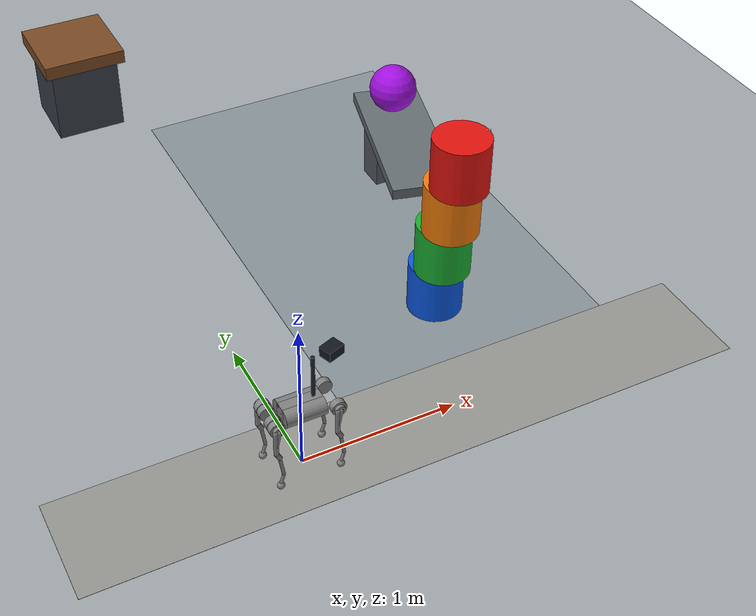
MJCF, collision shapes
<mujoco model="pss_go1_online">
  <compiler angle="radian" meshdir="../../pss/sim/mujoco/assets/go1/meshes" />
  <option timestep="0.001" iterations="100" ls_iterations="20">
    <flag eulerdamp="disable" />
  </option>
  <visual>
    <global offwidth="1280" offheight="720" />
    <headlight ambient="0.18 0.19 0.2" diffuse="0.24 0.25 0.27" specular="0 0 0" />
    <map fogstart="8" fogend="18" zfar="30" />
    <rgba haze="0.75 0.79 0.84 1" />
  </visual>
  <default>
    <default class="go1">
      <joint armature="0.005" damping="0.5" />
      <geom contype="0" conaffinity="0" condim="1" />
      <general forcerange="-23.7 23.7" biastype="affine" gainprm="35" biasprm="0 -35" />
      <default class="abduction">
        <joint range="-0.863 0.863" frictionloss="0.3" />
      </default>
      <default class="hip">
        <joint range="-0.686 4.501" frictionloss="0.3" />
      </default>
      <default class="knee">
        <joint range="-2.818 -0.888" frictionloss="1" />
        <general forcerange="-35.55 35.55" />
      </default>
      <default class="visual">
        <geom type="mesh" group="2" material="dark" />
      </default>
      <default class="collision">
        <geom type="capsule" conaffinity="1" group="3" />
        <default class="hip_left1">
          <geom size="0.046 0.02 0" type="cylinder" />
        </default>
        <default class="hip_left2">
          <geom size="0.031 0.02 0" type="cylinder" />
        </default>
        <default class="hip_left3">
          <geom size="0.046 0.02 0" type="cylinder" />
        </default>
        <default class="hip_right1">
          <geom size="0.046 0.02 0" type="cylinder" />
        </default>
        <default class="hip_right2">
          <geom size="0.031 0.02 0" type="cylinder" />
        </default>
        <default class="hip_right3">
          <geom size="0.046 0.02 0" type="cylinder" />
        </default>
        <default class="thigh1">
          <geom size="0.015 0 0" />
        </default>
        <default class="thigh2">
          <geom size="0.015 0 0" />
        </default>
        <default class="thigh3">
          <geom size="0.015 0 0" />
        </default>
        <default class="calf1">
          <geom size="0.01 0 0" />
        </default>
        <default class="calf2">
          <geom size="0.01 0 0" />
        </default>
        <default class="foot">
          <geom size="0.023 0 0" type="sphere" solimp="0.9 0.95 0.023" />
        </default>
      </default>
    </default>
  </default>
  <asset>
    <texture type="skybox" colorspace="auto" name="pss_sky" builtin="gradient" rgb1="0.8 0.84 0.87" rgb2="0.94 0.95 0.96" width="512" height="3072" />
    <material name="dark" specular="0.38" shininess="0.32" rgba="0.22 0.25 0.29 1" />
    <material name="pss_floor" specular="0" shininess="0" roughness="0.92" rgba="0.62 0.65 0.66 1" />
    <material name="pss_table_top" specular="0.3" shininess="0.22" rgba="0.48 0.29 0.14 0" />
    <material name="pss_table_base" specular="0.15" rgba="0.22 0.25 0.29 0" />
    <material name="pss_wall" roughness="0.9" rgba="0.84 0.86 0.88 1" />
    <mesh name="trunk" class="go1" content_type="model/stl" file="trunk.stl" />
    <mesh name="hip" class="go1" content_type="model/stl" file="hip.stl" />
    <mesh name="thigh_mirror" class="go1" content_type="model/stl" file="thigh_mirror.stl" />
    <mesh name="calf" class="go1" content_type="model/stl" file="calf.stl" />
    <mesh name="thigh" class="go1" content_type="model/stl" file="thigh.stl" />
  </asset>
  <worldbody>
    <geom name="floor" size="12 12 0.1" type="plane" conaffinity="0" priority="1" friction="0.8 0.01 0.001" material="pss_floor" />
    <light name="spotlight" target="trunk" pos="3 0 4" dir="0 0 -1" mode="targetbodycom" />
    <light name="pss_key" pos="-3.2 -4.2 6.5" dir="0.304061 0.390935 -0.868744" type="directional" diffuse="0.58 0.56 0.53" specular="0.12 0.12 0.12" />
    <light name="pss_fill" pos="3.2 -1 4" dir="-0.477809 0.130312 -0.868744" type="directional" castshadow="false" diffuse="0.22 0.26 0.3" specular="0.08 0.1 0.13" />
    <body name="trunk" childclass="go1" pos="0 0 0.445">
      <inertial pos="0.0223 0.002 -0.0005" quat="-0.00342088 0.705204 0.000106698 0.708996" mass="5.204" diaginertia="0.0716565 0.0630105 0.0168101" />
      <joint type="free" armature="0" damping="0" />
      <geom class="visual" mesh="trunk" />
      <geom class="collision" size="0.125 0.04 0.057" type="box" />
      <geom class="collision" size="0.058 0.125" pos="0 -0.04 0" quat="0.707107 0 0.707107 0" type="cylinder" />
      <geom class="collision" size="0.058 0.125" pos="0 0.04 0" quat="0.707107 0 0.707107 0" type="cylinder" />
      <site name="head" pos="0.3 0 0" size="0.02" group="5" rgba="1 0 0 1" />
      <site name="imu" pos="-0.01592 -0.06659 -0.00617" group="5" />
      <camera name="track" pos="0.846 -1.3 0.316" quat="0.791164 0.554139 0.148485 0.211997" mode="trackcom" />
      <camera name="top" pos="-1 0 1" quat="0.653281 0.270598 -0.270598 -0.653281" mode="trackcom" />
      <camera name="side" pos="0 -1 0.3" quat="0.850651 0.525731 0 0" mode="trackcom" />
      <camera name="back" pos="-1 0 0.3" quat="0.601501 0.371748 -0.371748 -0.601501" mode="trackcom" />
      <body name="rgbd_mast" pos="0.08 0 0.055">
        <geom size="0.012 0.145" pos="0 0 0.145" type="cylinder" group="2" mass="0.04" rgba="0.12 0.14 0.17 1" />
        <camera name="omnivla_ego" pos="0.34 0 0.32" quat="0.463904 0.53366 -0.53366 -0.463904" fovy="85" />
        <body name="rgbd_head" pos="0.115 0 0.295" quat="0.984808 0 0 0.173648">
          <geom size="0.055 0.042 0.032" type="box" group="2" mass="0.12" rgba="0.07 0.09 0.12 1" />
          <geom size="0.014 0.006" pos="0.055 -0.021 0" quat="0.707107 0 0.707107 0" type="cylinder" group="2" mass="0.01" rgba="0.05 0.18 0.28 1" />
          <geom size="0.014 0.006" pos="0.055 0.021 0" quat="0.707107 0 0.707107 0" type="cylinder" group="2" mass="0.01" rgba="0.05 0.18 0.28 1" />
          <camera name="ego_rgbd" pos="0.065 0 0" quat="-0.5 -0.5 0.5 0.5" fovy="85" />
        </body>
      </body>
      <body name="FR_hip" pos="0.1881 -0.04675 0">
        <inertial pos="-0.0049166 0.00762615 -8.865e-05" quat="0.507341 0.514169 0.495027 0.482891" mass="0.68" diaginertia="0.000734064 0.000468438 0.000398719" />
        <joint name="FR_hip_joint" class="abduction" pos="0 0 0" axis="1 0 0" />
        <geom class="visual" mesh="hip" />
        <geom class="hip_right1" pos="0 -0.045 0" quat="0.707107 0.707107 0 0" />
        <geom class="hip_right2" pos="0 -0.065 0" quat="0.707107 0.707107 0 0" />
        <body name="FR_thigh" pos="0 -0.08 0">
          <inertial pos="-0.00304722 0.019315 -0.0305004" quat="0.65243 -0.0272313 0.0775126 0.753383" mass="1.009" diaginertia="0.00478717 0.00460903 0.000709268" />
          <joint name="FR_thigh_joint" class="hip" pos="0 0 0" axis="0 1 0" />
          <geom class="visual" mesh="thigh_mirror" />
          <geom class="thigh1" size="0.015 0.08" pos="-0.02 0 -0.08" />
          <geom class="thigh2" size="0.015 0.0509902" pos="-0.01 0 -0.05" quat="0.995133 0 0.0985376 0" />
          <geom class="thigh3" size="0.015 0.0223607" pos="-0.01 0 -0.18" quat="0.973249 0 -0.229753 0" />
          <body name="FR_calf" pos="0 0 -0.213">
            <inertial pos="0.00429862 0.000976676 -0.146197" quat="0.691246 0.00357467 0.00511118 0.722592" mass="0.195862" diaginertia="0.00149767 0.00148468 3.58427e-05" />
            <joint name="FR_calf_joint" class="knee" pos="0 0 0" axis="0 1 0" />
            <geom class="visual" mesh="calf" />
            <geom class="calf1" size="0.01 0.0657647" pos="0.01 0 -0.065" quat="0.997089 0 -0.0762506 0" />
            <geom class="calf2" size="0.01 0.0364005" pos="0.01 0 -0.165" quat="0.990334 0 0.138701 0" />
            <geom name="FR" class="foot" pos="0 0 -0.213" />
            <site name="FR" pos="0 0 -0.213" size="0.023" group="5" />
          </body>
        </body>
      </body>
      <body name="FL_hip" pos="0.1881 0.04675 0">
        <inertial pos="-0.0049166 -0.00762615 -8.865e-05" quat="0.482891 0.495027 0.514169 0.507341" mass="0.68" diaginertia="0.000734064 0.000468438 0.000398719" />
        <joint name="FL_hip_joint" class="abduction" pos="0 0 0" axis="1 0 0" />
        <geom class="visual" mesh="hip" />
        <geom class="hip_left1" pos="0 0.045 0" quat="0.707107 0.707107 0 0" />
        <geom class="hip_left2" pos="0 0.065 0" quat="0.707107 0.707107 0 0" />
        <body name="FL_thigh" pos="0 0.08 0">
          <inertial pos="-0.00304722 -0.019315 -0.0305004" quat="0.753383 0.0775126 -0.0272313 0.65243" mass="1.009" diaginertia="0.00478717 0.00460903 0.000709268" />
          <joint name="FL_thigh_joint" class="hip" pos="0 0 0" axis="0 1 0" />
          <geom class="visual" mesh="thigh" />
          <geom class="thigh1" size="0.015 0.08" pos="-0.02 0 -0.08" />
          <geom class="thigh2" size="0.015 0.0509902" pos="-0.01 0 -0.05" quat="0.995133 0 0.0985376 0" />
          <geom class="thigh3" size="0.015 0.0223607" pos="-0.01 0 -0.18" quat="0.973249 0 -0.229753 0" />
          <body name="FL_calf" pos="0 0 -0.213">
            <inertial pos="0.00429862 0.000976676 -0.146197" quat="0.691246 0.00357467 0.00511118 0.722592" mass="0.195862" diaginertia="0.00149767 0.00148468 3.58427e-05" />
            <joint name="FL_calf_joint" class="knee" pos="0 0 0" axis="0 1 0" />
            <geom class="visual" mesh="calf" />
            <geom class="calf1" size="0.01 0.0657647" pos="0.01 0 -0.065" quat="0.997089 0 -0.0762506 0" />
            <geom class="calf2" size="0.01 0.0364005" pos="0.01 0 -0.165" quat="0.990334 0 0.138701 0" />
            <geom name="FL" class="foot" pos="0 0 -0.213" />
            <site name="FL" pos="0 0 -0.213" size="0.023" group="5" />
          </body>
        </body>
      </body>
      <body name="RR_hip" pos="-0.1881 -0.04675 0">
        <inertial pos="0.0049166 0.00762615 -8.865e-05" quat="0.495027 0.482891 0.507341 0.514169" mass="0.68" diaginertia="0.000734064 0.000468438 0.000398719" />
        <joint name="RR_hip_joint" class="abduction" pos="0 0 0" axis="1 0 0" />
        <geom class="visual" quat="0 0 0 -1" mesh="hip" />
        <geom class="hip_right1" pos="0 -0.045 0" quat="0.707107 0.707107 0 0" />
        <geom class="hip_right2" pos="0 -0.065 0" quat="0.707107 0.707107 0 0" />
        <geom class="hip_right3" quat="0.707107 0.707107 0 0" />
        <body name="RR_thigh" pos="0 -0.08 0">
          <inertial pos="-0.00304722 0.019315 -0.0305004" quat="0.65243 -0.0272313 0.0775126 0.753383" mass="1.009" diaginertia="0.00478717 0.00460903 0.000709268" />
          <joint name="RR_thigh_joint" class="hip" pos="0 0 0" axis="0 1 0" />
          <geom class="visual" mesh="thigh_mirror" />
          <geom class="thigh1" size="0.015 0.08" pos="-0.02 0 -0.08" />
          <geom class="thigh2" size="0.015 0.0509902" pos="-0.01 0 -0.05" quat="0.995133 0 0.0985376 0" />
          <geom class="thigh3" size="0.015 0.0223607" pos="-0.01 0 -0.18" quat="0.973249 0 -0.229753 0" />
          <body name="RR_calf" pos="0 0 -0.213">
            <inertial pos="0.00429862 0.000976676 -0.146197" quat="0.691246 0.00357467 0.00511118 0.722592" mass="0.195862" diaginertia="0.00149767 0.00148468 3.58427e-05" />
            <joint name="RR_calf_joint" class="knee" pos="0 0 0" axis="0 1 0" />
            <geom class="visual" mesh="calf" />
            <geom class="calf1" size="0.01 0.0657647" pos="0.01 0 -0.065" quat="0.997089 0 -0.0762506 0" />
            <geom class="calf2" size="0.01 0.0364005" pos="0.01 0 -0.165" quat="0.990334 0 0.138701 0" />
            <geom name="RR" class="foot" pos="0 0 -0.213" />
            <site name="RR" pos="0 0 -0.213" size="0.023" group="5" />
          </body>
        </body>
      </body>
      <body name="RL_hip" pos="-0.1881 0.04675 0">
        <inertial pos="0.0049166 -0.00762615 -8.865e-05" quat="0.514169 0.507341 0.482891 0.495027" mass="0.68" diaginertia="0.000734064 0.000468438 0.000398719" />
        <joint name="RL_hip_joint" class="abduction" pos="0 0 0" axis="1 0 0" />
        <geom class="visual" quat="0 0 1 0" mesh="hip" />
        <geom class="hip_left1" pos="0 0.045 0" quat="0.707107 0.707107 0 0" />
        <geom class="hip_left2" pos="0 0.065 0" quat="0.707107 0.707107 0 0" />
        <geom class="hip_left3" quat="0.707107 0.707107 0 0" />
        <body name="RL_thigh" pos="0 0.08 0">
          <inertial pos="-0.00304722 -0.019315 -0.0305004" quat="0.753383 0.0775126 -0.0272313 0.65243" mass="1.009" diaginertia="0.00478717 0.00460903 0.000709268" />
          <joint name="RL_thigh_joint" class="hip" pos="0 0 0" axis="0 1 0" />
          <geom class="visual" mesh="thigh" />
          <geom class="thigh1" size="0.015 0.08" pos="-0.02 0 -0.08" />
          <geom class="thigh2" size="0.015 0.0509902" pos="-0.01 0 -0.05" quat="0.995133 0 0.0985376 0" />
          <geom class="thigh3" size="0.015 0.0223607" pos="-0.01 0 -0.18" quat="0.973249 0 -0.229753 0" />
          <body name="RL_calf" pos="0 0 -0.213">
            <inertial pos="0.00429862 0.000976676 -0.146197" quat="0.691246 0.00357467 0.00511118 0.722592" mass="0.195862" diaginertia="0.00149767 0.00148468 3.58427e-05" />
            <joint name="RL_calf_joint" class="knee" pos="0 0 0" axis="0 1 0" />
            <geom class="visual" mesh="calf" />
            <geom class="calf1" size="0.01 0.0657647" pos="0.01 0 -0.065" quat="0.997089 0 -0.0762506 0" />
            <geom class="calf2" size="0.01 0.0364005" pos="0.01 0 -0.165" quat="0.990334 0 0.138701 0" />
            <geom name="RL" class="foot" pos="0 0 -0.213" />
            <site name="RL" pos="0 0 -0.213" size="0.023" group="5" />
          </body>
        </body>
      </body>
    </body>
    <body name="table" pos="0 4 0">
      <geom name="table_pedestal" size="0.25 0.25 0.275" pos="0 0 0.275" type="box" friction="0.8 0.01 0.001" material="pss_table_base" />
      <geom name="table_top" size="0.3 0.3 0.05" pos="0 0 0.6" type="box" friction="0.8 0.01 0.001" material="pss_table_top" />
    </body>
    <body name="scene_prop_event_floor_inlay" pos="1.35 1.85 .0005">
      <geom name="scene_prop_geom_event_floor_inlay" size="0.95 1.7 0.001" type="box" contype="0" conaffinity="0" friction="0.6 0.01 0.001" rgba="0.53 0.57 0.59 1" />
    </body>
    <body name="scene_prop_route_floor_inlay" pos="0.675 0 0.001">
      <geom name="scene_prop_geom_route_floor_inlay" size="2.125 0.35 0.001" type="box" contype="0" conaffinity="0" friction="0.6 0.01 0.001" rgba="0.58 0.58 0.56 1" />
    </body>
    <body name="cylinder_0" pos="1.35 0.85 0.18" quat="1 0 0 0">
      <freejoint name="cylinder_0_free" />
      <geom name="cylinder_0" type="cylinder" size=".18 .18" mass="2" rgba="0.04 0.34 0.88 1" contype="1" conaffinity="1" condim="6" priority="2" friction=".45 .002 .00002" solref="0.008 1" />
      <geom name="cylinder_0_stripe" type="box" size=".012 .004 .181" pos="0.176 0 0" rgba="0.98 0.98 0.91 1" mass="0" contype="0" conaffinity="0" />
    </body>
    <body name="cylinder_1" pos="1.35 0.78 0.54" quat="1 0 0 0">
      <freejoint name="cylinder_1_free" />
      <geom name="cylinder_1" type="cylinder" size=".18 .18" mass="2" rgba="0.10 0.68 0.19 1" contype="1" conaffinity="1" condim="6" priority="2" friction=".45 .002 .00002" solref="0.008 1" />
      <geom name="cylinder_1_stripe" type="box" size=".012 .004 .181" pos="0.176 0 0" rgba="0.98 0.98 0.91 1" mass="0" contype="0" conaffinity="0" />
    </body>
    <body name="cylinder_2" pos="1.35 0.71 0.8999999999999999" quat="1 0 0 0">
      <freejoint name="cylinder_2_free" />
      <geom name="cylinder_2" type="cylinder" size=".18 .18" mass="2" rgba="0.94 0.48 0.035 1" contype="1" conaffinity="1" condim="6" priority="2" friction=".45 .002 .00002" solref="0.008 1" />
      <geom name="cylinder_2_stripe" type="box" size=".012 .004 .181" pos="0.176 0 0" rgba="0.98 0.98 0.91 1" mass="0" contype="0" conaffinity="0" />
    </body>
    <body name="cylinder_3" pos="1.35 0.6399999999999999 1.26" quat="1 0 0 0">
      <freejoint name="cylinder_3_free" />
      <geom name="cylinder_3" type="cylinder" size=".18 .18" mass="2" rgba="0.88 0.075 0.055 1" contype="1" conaffinity="1" condim="6" priority="2" friction=".45 .002 .00002" solref="0.008 1" />
      <geom name="cylinder_3_stripe" type="box" size=".012 .004 .181" pos="0.176 0 0" rgba="0.98 0.98 0.91 1" mass="0" contype="0" conaffinity="0" />
    </body>
    <body name="striker" pos="1.6550000000000002 2.0312599205932624 .89">
      <freejoint name="striker_free" />
      <geom name="striker" type="sphere" size="0.16" mass="6" rgba="0.63 0.06 0.88 1" contype="1" conaffinity="1" condim="6" priority="2" friction="0.6 0.002 0.00002" solref="0.008 1" />
    </body>
    <geom name="ball_launch_shelf" type="box" size="0.5800000000000002 .22 .035" pos="1.5700000000000003 1.702056336165632 .695" quat="0.6123724356957945 0 0 -0.7905694150420949" rgba=".40 .43 .45 1" contype="1" conaffinity="1" friction=".6 .002 .00002" />
    <geom name="ball_launch_stand" type="box" size=".10 .10 .33" pos="1.7150000000000003 2.2636389213657075 .33" rgba=".32 .35 .38 1" contype="1" conaffinity="1" />
  </worldbody>
  <actuator>
    <general name="FR_hip" class="abduction" joint="FR_hip_joint" ctrlrange="-0.863 0.863" />
    <general name="FR_thigh" class="hip" joint="FR_thigh_joint" ctrlrange="-0.686 4.501" />
    <general name="FR_calf" class="knee" joint="FR_calf_joint" ctrlrange="-2.818 -0.888" />
    <general name="FL_hip" class="abduction" joint="FL_hip_joint" ctrlrange="-0.863 0.863" />
    <general name="FL_thigh" class="hip" joint="FL_thigh_joint" ctrlrange="-0.686 4.501" />
    <general name="FL_calf" class="knee" joint="FL_calf_joint" ctrlrange="-2.818 -0.888" />
    <general name="RR_hip" class="abduction" joint="RR_hip_joint" ctrlrange="-0.863 0.863" />
    <general name="RR_thigh" class="hip" joint="RR_thigh_joint" ctrlrange="-0.686 4.501" />
    <general name="RR_calf" class="knee" joint="RR_calf_joint" ctrlrange="-2.818 -0.888" />
    <general name="RL_hip" class="abduction" joint="RL_hip_joint" ctrlrange="-0.863 0.863" />
    <general name="RL_thigh" class="hip" joint="RL_thigh_joint" ctrlrange="-0.686 4.501" />
    <general name="RL_calf" class="knee" joint="RL_calf_joint" ctrlrange="-2.818 -0.888" />
  </actuator>
  <sensor>
    <gyro site="imu" name="gyro" />
    <velocimeter site="imu" name="local_linvel" />
    <accelerometer site="imu" name="accelerometer" />
    <framepos objtype="site" objname="imu" name="position" />
    <framezaxis objtype="site" objname="imu" name="upvector" />
    <framexaxis objtype="site" objname="imu" name="forwardvector" />
    <framelinvel objtype="site" objname="imu" name="global_linvel" />
    <frameangvel objtype="site" objname="imu" name="global_angvel" />
    <framequat objtype="site" objname="imu" name="orientation" />
    <framelinvel objtype="site" objname="FR" name="FR_global_linvel" />
    <framelinvel objtype="site" objname="FL" name="FL_global_linvel" />
    <framelinvel objtype="site" objname="RR" name="RR_global_linvel" />
    <framelinvel objtype="site" objname="RL" name="RL_global_linvel" />
    <framepos objtype="site" objname="FR" reftype="site" refname="imu" name="FR_pos" />
    <framepos objtype="site" objname="FL" reftype="site" refname="imu" name="FL_pos" />
    <framepos objtype="site" objname="RR" reftype="site" refname="imu" name="RR_pos" />
    <framepos objtype="site" objname="RL" reftype="site" refname="imu" name="RL_pos" />
  </sensor>
</mujoco>
